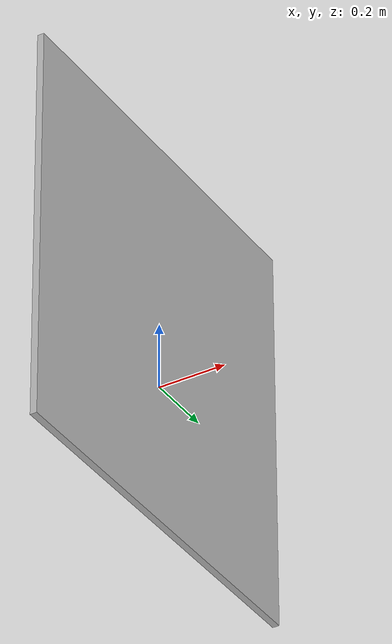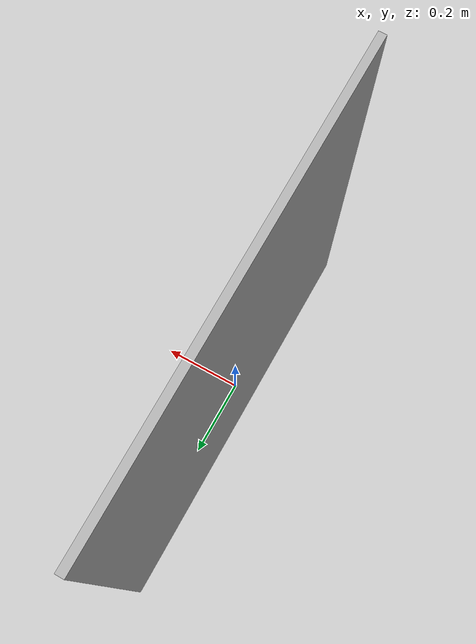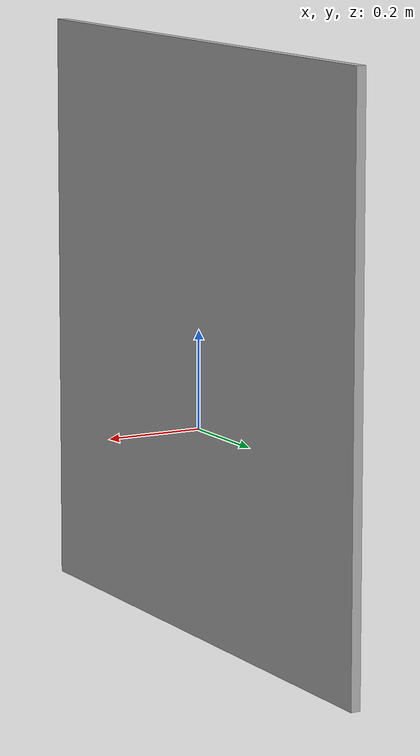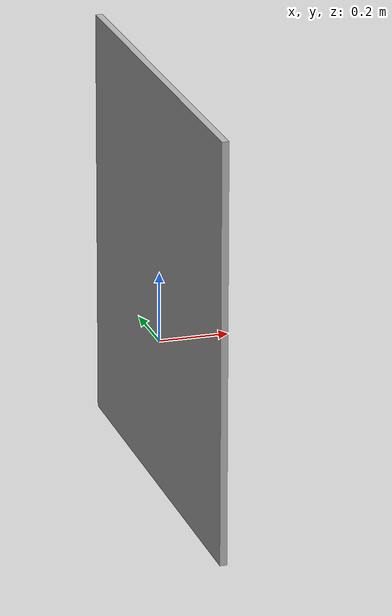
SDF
<?xml version="1.0"?>
<sdf version="1.6">
  <model name="building_sign_01">
    <static>true</static>
    <link name="sign">
      <visual name="visual">
        <pose>0 0 0.175 0 0 0</pose>
        <geometry>
          <box>
            <size>0.02 1.2 1.2</size>
          </box>
        </geometry>
        <material>
          <script>
            <uri>model://photo_signs/building_sign_01/materials/scripts</uri>
            <uri>model://photo_signs/building_sign_01/materials/textures</uri>
            <name>PhotoSign/building_sign_01</name>
          </script>
        </material>
      </visual>
    </link>
  </model>
</sdf>
